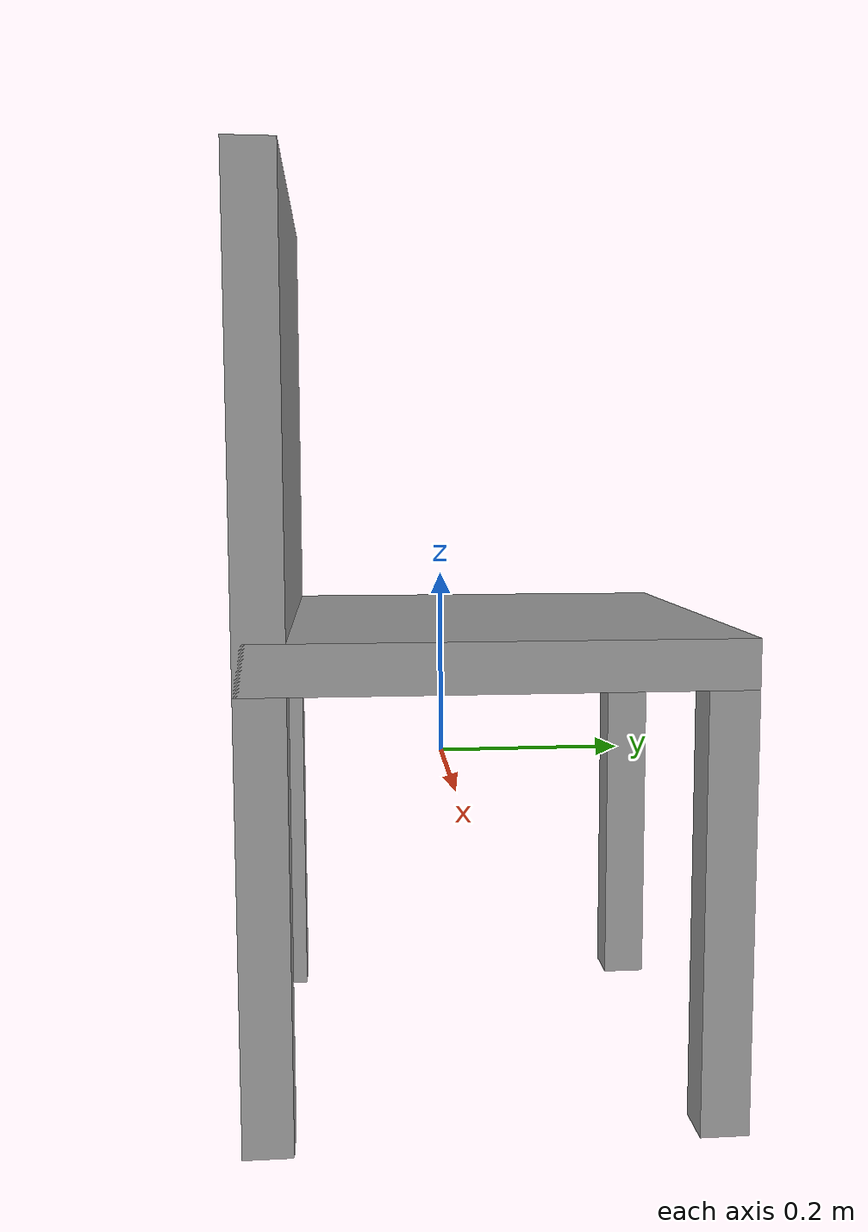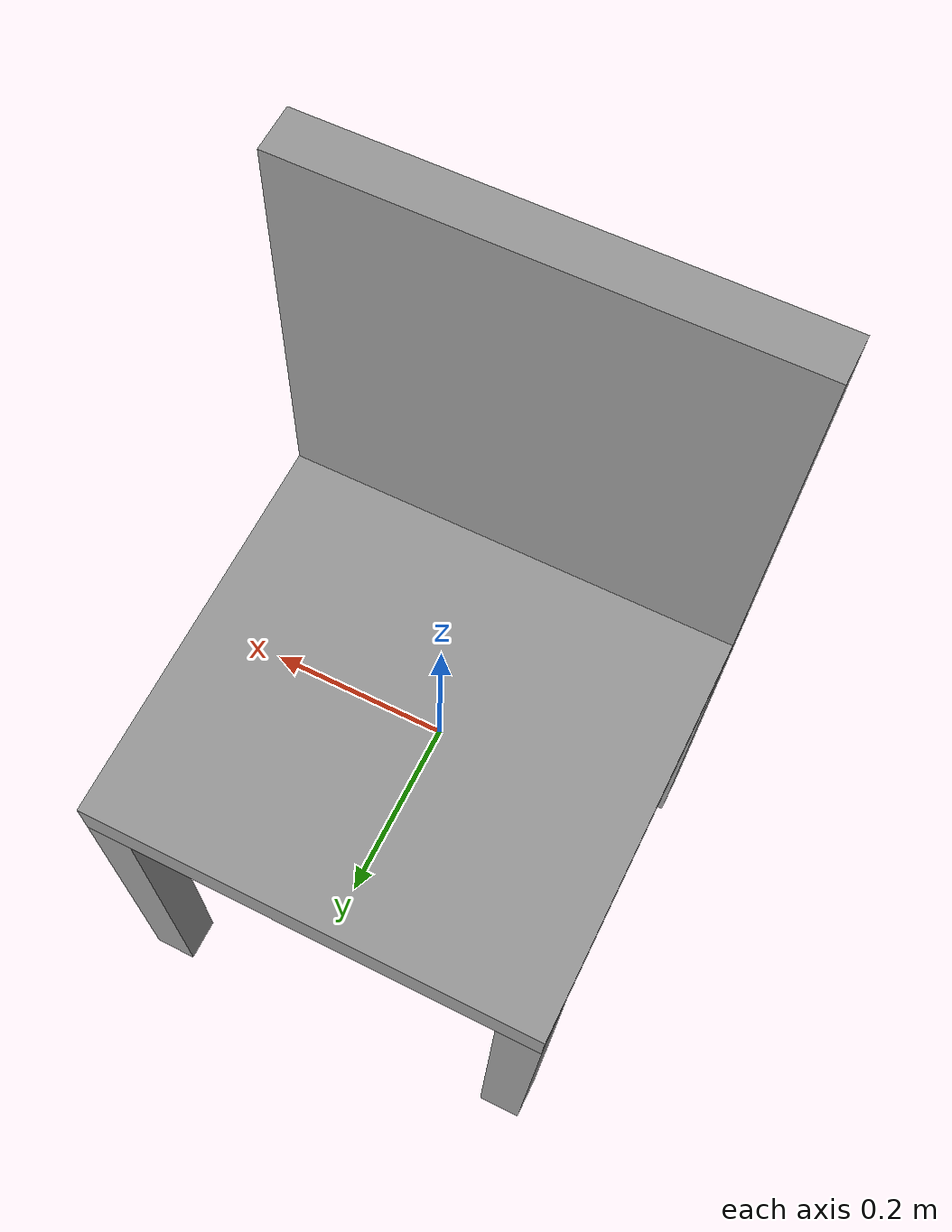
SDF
<?xml version='1.0'?>
<sdf version='1.6'>
  <model name='Chair'>
    <link name='link_5'>
      <pose frame=''>-0.225 0.256445 -0.120833 0 -0 0</pose>
      <inertial>
        <mass>1</mass>
        <inertia>
          <ixx>0.166667</ixx>
          <ixy>0</ixy>
          <ixz>0</ixz>
          <iyy>0.166667</iyy>
          <iyz>0</iyz>
          <izz>0.166667</izz>
        </inertia>
        <pose frame=''>0 0 0 0 -0 0</pose>
      </inertial>
      <gravity>1</gravity>
      <self_collide>0</self_collide>
      <kinematic>0</kinematic>
      <visual name='visual'>
        <pose frame=''>0 0 0 0 -0 0</pose>
        <geometry>
          <box>
            <size>0.05 0.05 0.45</size>
          </box>
        </geometry>
        <material>
          <lighting>1</lighting>
          <script>
            <uri>file://media/materials/scripts/gazebo.material</uri>
            <name>Gazebo/Grey</name>
          </script>
          <ambient>0.3 0.3 0.3 1</ambient>
          <diffuse>0.7 0.7 0.7 1</diffuse>
          <specular>0.01 0.01 0.01 1</specular>
          <emissive>0 0 0 1</emissive>
          <shader type='vertex'>
            <normal_map>__default__</normal_map>
          </shader>
        </material>
        <transparency>0</transparency>
        <cast_shadows>1</cast_shadows>
      </visual>
      <collision name='collision'>
        <laser_retro>0</laser_retro>
        <max_contacts>10</max_contacts>
        <pose frame=''>0 0 0 0 -0 0</pose>
        <geometry>
          <box>
            <size>0.05 0.05 0.45</size>
          </box>
        </geometry>
        <surface>
          <friction>
            <ode>
              <mu>1</mu>
              <mu2>1</mu2>
              <fdir1>0 0 0</fdir1>
              <slip1>0</slip1>
              <slip2>0</slip2>
            </ode>
            <torsional>
              <coefficient>1</coefficient>
              <patch_radius>0</patch_radius>
              <surface_radius>0</surface_radius>
              <use_patch_radius>1</use_patch_radius>
              <ode>
                <slip>0</slip>
              </ode>
            </torsional>
          </friction>
          <bounce>
            <restitution_coefficient>0</restitution_coefficient>
            <threshold>1e+06</threshold>
          </bounce>
          <contact>
            <collide_without_contact>0</collide_without_contact>
            <collide_without_contact_bitmask>1</collide_without_contact_bitmask>
            <collide_bitmask>1</collide_bitmask>
            <ode>
              <soft_cfm>0</soft_cfm>
              <soft_erp>0.2</soft_erp>
              <kp>1e+13</kp>
              <kd>1</kd>
              <max_vel>0.01</max_vel>
              <min_depth>0</min_depth>
            </ode>
            <bullet>
              <split_impulse>1</split_impulse>
              <split_impulse_penetration_threshold>-0.01</split_impulse_penetration_threshold>
              <soft_cfm>0</soft_cfm>
              <soft_erp>0.2</soft_erp>
              <kp>1e+13</kp>
              <kd>1</kd>
            </bullet>
          </contact>
        </surface>
      </collision>
    </link>
    <link name='link_5_clone'>
      <pose frame=''>0.225 0.263711 -0.120833 0 -0 0</pose>
      <inertial>
        <mass>1</mass>
        <inertia>
          <ixx>0.166667</ixx>
          <ixy>0</ixy>
          <ixz>0</ixz>
          <iyy>0.166667</iyy>
          <iyz>0</iyz>
          <izz>0.166667</izz>
        </inertia>
        <pose frame=''>0 0 0 0 -0 0</pose>
      </inertial>
      <self_collide>0</self_collide>
      <kinematic>0</kinematic>
      <visual name='visual'>
        <pose frame=''>0 0 0 0 -0 0</pose>
        <geometry>
          <box>
            <size>0.05 0.05 0.45</size>
          </box>
        </geometry>
        <material>
          <lighting>1</lighting>
          <script>
            <uri>file://media/materials/scripts/gazebo.material</uri>
            <name>Gazebo/Grey</name>
          </script>
          <ambient>0.3 0.3 0.3 1</ambient>
          <diffuse>0.7 0.7 0.7 1</diffuse>
          <specular>0.01 0.01 0.01 1</specular>
          <emissive>0 0 0 1</emissive>
          <shader type='vertex'>
            <normal_map>__default__</normal_map>
          </shader>
        </material>
        <transparency>0</transparency>
        <cast_shadows>1</cast_shadows>
      </visual>
      <collision name='collision'>
        <laser_retro>0</laser_retro>
        <max_contacts>10</max_contacts>
        <pose frame=''>0 0 0 0 -0 0</pose>
        <geometry>
          <box>
            <size>0.05 0.05 0.45</size>
          </box>
        </geometry>
        <surface>
          <friction>
            <ode>
              <mu>1</mu>
              <mu2>1</mu2>
              <fdir1>0 0 0</fdir1>
              <slip1>0</slip1>
              <slip2>0</slip2>
            </ode>
            <torsional>
              <coefficient>1</coefficient>
              <patch_radius>0</patch_radius>
              <surface_radius>0</surface_radius>
              <use_patch_radius>1</use_patch_radius>
              <ode>
                <slip>0</slip>
              </ode>
            </torsional>
          </friction>
          <bounce>
            <restitution_coefficient>0</restitution_coefficient>
            <threshold>1e+06</threshold>
          </bounce>
          <contact>
            <collide_without_contact>0</collide_without_contact>
            <collide_without_contact_bitmask>1</collide_without_contact_bitmask>
            <collide_bitmask>1</collide_bitmask>
            <ode>
              <soft_cfm>0</soft_cfm>
              <soft_erp>0.2</soft_erp>
              <kp>1e+13</kp>
              <kd>1</kd>
              <max_vel>0.01</max_vel>
              <min_depth>0</min_depth>
            </ode>
            <bullet>
              <split_impulse>1</split_impulse>
              <split_impulse_penetration_threshold>-0.01</split_impulse_penetration_threshold>
              <soft_cfm>0</soft_cfm>
              <soft_erp>0.2</soft_erp>
              <kp>1e+13</kp>
              <kd>1</kd>
            </bullet>
          </contact>
        </surface>
      </collision>
    </link>
    <link name='link_5_clone_0'>
      <pose frame=''>0.225 -0.186289 -0.120833 0 -0 0</pose>
      <inertial>
        <mass>1</mass>
        <inertia>
          <ixx>0.166667</ixx>
          <ixy>0</ixy>
          <ixz>0</ixz>
          <iyy>0.166667</iyy>
          <iyz>0</iyz>
          <izz>0.166667</izz>
        </inertia>
        <pose frame=''>0 0 0 0 -0 0</pose>
      </inertial>
      <self_collide>0</self_collide>
      <kinematic>0</kinematic>
      <visual name='visual'>
        <pose frame=''>0 0 0 0 -0 0</pose>
        <geometry>
          <box>
            <size>0.05 0.05 0.45</size>
          </box>
        </geometry>
        <material>
          <lighting>1</lighting>
          <script>
            <uri>file://media/materials/scripts/gazebo.material</uri>
            <name>Gazebo/Grey</name>
          </script>
          <ambient>0.3 0.3 0.3 1</ambient>
          <diffuse>0.7 0.7 0.7 1</diffuse>
          <specular>0.01 0.01 0.01 1</specular>
          <emissive>0 0 0 1</emissive>
          <shader type='vertex'>
            <normal_map>__default__</normal_map>
          </shader>
        </material>
        <transparency>0</transparency>
        <cast_shadows>1</cast_shadows>
      </visual>
      <collision name='collision'>
        <laser_retro>0</laser_retro>
        <max_contacts>10</max_contacts>
        <pose frame=''>0 0 0 0 -0 0</pose>
        <geometry>
          <box>
            <size>0.05 0.05 0.45</size>
          </box>
        </geometry>
        <surface>
          <friction>
            <ode>
              <mu>1</mu>
              <mu2>1</mu2>
              <fdir1>0 0 0</fdir1>
              <slip1>0</slip1>
              <slip2>0</slip2>
            </ode>
            <torsional>
              <coefficient>1</coefficient>
              <patch_radius>0</patch_radius>
              <surface_radius>0</surface_radius>
              <use_patch_radius>1</use_patch_radius>
              <ode>
                <slip>0</slip>
              </ode>
            </torsional>
          </friction>
          <bounce>
            <restitution_coefficient>0</restitution_coefficient>
            <threshold>1e+06</threshold>
          </bounce>
          <contact>
            <collide_without_contact>0</collide_without_contact>
            <collide_without_contact_bitmask>1</collide_without_contact_bitmask>
            <collide_bitmask>1</collide_bitmask>
            <ode>
              <soft_cfm>0</soft_cfm>
              <soft_erp>0.2</soft_erp>
              <kp>1e+13</kp>
              <kd>1</kd>
              <max_vel>0.01</max_vel>
              <min_depth>0</min_depth>
            </ode>
            <bullet>
              <split_impulse>1</split_impulse>
              <split_impulse_penetration_threshold>-0.01</split_impulse_penetration_threshold>
              <soft_cfm>0</soft_cfm>
              <soft_erp>0.2</soft_erp>
              <kp>1e+13</kp>
              <kd>1</kd>
            </bullet>
          </contact>
        </surface>
      </collision>
    </link>
    <link name='link_5_clone_1'>
      <pose frame=''>-0.225 -0.186289 -0.120833 0 -0 0</pose>
      <inertial>
        <mass>1</mass>
        <inertia>
          <ixx>0.166667</ixx>
          <ixy>0</ixy>
          <ixz>0</ixz>
          <iyy>0.166667</iyy>
          <iyz>0</iyz>
          <izz>0.166667</izz>
        </inertia>
        <pose frame=''>0 0 0 0 -0 0</pose>
      </inertial>
      <self_collide>0</self_collide>
      <kinematic>0</kinematic>
      <visual name='visual'>
        <pose frame=''>0 0 0 0 -0 0</pose>
        <geometry>
          <box>
            <size>0.05 0.05 0.45</size>
          </box>
        </geometry>
        <material>
          <lighting>1</lighting>
          <script>
            <uri>file://media/materials/scripts/gazebo.material</uri>
            <name>Gazebo/Grey</name>
          </script>
          <ambient>0.3 0.3 0.3 1</ambient>
          <diffuse>0.7 0.7 0.7 1</diffuse>
          <specular>0.01 0.01 0.01 1</specular>
          <emissive>0 0 0 1</emissive>
          <shader type='vertex'>
            <normal_map>__default__</normal_map>
          </shader>
        </material>
        <transparency>0</transparency>
        <cast_shadows>1</cast_shadows>
      </visual>
      <collision name='collision'>
        <laser_retro>0</laser_retro>
        <max_contacts>10</max_contacts>
        <pose frame=''>0 0 0 0 -0 0</pose>
        <geometry>
          <box>
            <size>0.05 0.05 0.45</size>
          </box>
        </geometry>
        <surface>
          <friction>
            <ode>
              <mu>1</mu>
              <mu2>1</mu2>
              <fdir1>0 0 0</fdir1>
              <slip1>0</slip1>
              <slip2>0</slip2>
            </ode>
            <torsional>
              <coefficient>1</coefficient>
              <patch_radius>0</patch_radius>
              <surface_radius>0</surface_radius>
              <use_patch_radius>1</use_patch_radius>
              <ode>
                <slip>0</slip>
              </ode>
            </torsional>
          </friction>
          <bounce>
            <restitution_coefficient>0</restitution_coefficient>
            <threshold>1e+06</threshold>
          </bounce>
          <contact>
            <collide_without_contact>0</collide_without_contact>
            <collide_without_contact_bitmask>1</collide_without_contact_bitmask>
            <collide_bitmask>1</collide_bitmask>
            <ode>
              <soft_cfm>0</soft_cfm>
              <soft_erp>0.2</soft_erp>
              <kp>1e+13</kp>
              <kd>1</kd>
              <max_vel>0.01</max_vel>
              <min_depth>0</min_depth>
            </ode>
            <bullet>
              <split_impulse>1</split_impulse>
              <split_impulse_penetration_threshold>-0.01</split_impulse_penetration_threshold>
              <soft_cfm>0</soft_cfm>
              <soft_erp>0.2</soft_erp>
              <kp>1e+13</kp>
              <kd>1</kd>
            </bullet>
          </contact>
        </surface>
      </collision>
    </link>
    <link name='link_7'>
      <pose frame=''>-0 -0.186289 0.354167 0 -0 0</pose>
      <inertial>
        <mass>1</mass>
        <inertia>
          <ixx>0.166667</ixx>
          <ixy>0</ixy>
          <ixz>0</ixz>
          <iyy>0.166667</iyy>
          <iyz>0</iyz>
          <izz>0.166667</izz>
        </inertia>
        <pose frame=''>0 0 0 0 -0 0</pose>
      </inertial>
      <gravity>1</gravity>
      <self_collide>0</self_collide>
      <kinematic>0</kinematic>
      <visual name='visual'>
        <pose frame=''>0 0 0 0 -0 0</pose>
        <geometry>
          <box>
            <size>0.5 0.05 0.5</size>
          </box>
        </geometry>
        <material>
          <lighting>1</lighting>
          <script>
            <uri>file://media/materials/scripts/gazebo.material</uri>
            <name>Gazebo/Grey</name>
          </script>
          <ambient>0.3 0.3 0.3 1</ambient>
          <diffuse>0.7 0.7 0.7 1</diffuse>
          <specular>0.01 0.01 0.01 1</specular>
          <emissive>0 0 0 1</emissive>
          <shader type='vertex'>
            <normal_map>__default__</normal_map>
          </shader>
        </material>
        <transparency>0</transparency>
        <cast_shadows>1</cast_shadows>
      </visual>
      <collision name='collision'>
        <laser_retro>0</laser_retro>
        <max_contacts>10</max_contacts>
        <pose frame=''>0 0 0 0 -0 0</pose>
        <geometry>
          <box>
            <size>0.5 0.05 0.5</size>
          </box>
        </geometry>
        <surface>
          <friction>
            <ode>
              <mu>1</mu>
              <mu2>1</mu2>
              <fdir1>0 0 0</fdir1>
              <slip1>0</slip1>
              <slip2>0</slip2>
            </ode>
            <torsional>
              <coefficient>1</coefficient>
              <patch_radius>0</patch_radius>
              <surface_radius>0</surface_radius>
              <use_patch_radius>1</use_patch_radius>
              <ode>
                <slip>0</slip>
              </ode>
            </torsional>
          </friction>
          <bounce>
            <restitution_coefficient>0</restitution_coefficient>
            <threshold>1e+06</threshold>
          </bounce>
          <contact>
            <collide_without_contact>0</collide_without_contact>
            <collide_without_contact_bitmask>1</collide_without_contact_bitmask>
            <collide_bitmask>1</collide_bitmask>
            <ode>
              <soft_cfm>0</soft_cfm>
              <soft_erp>0.2</soft_erp>
              <kp>1e+13</kp>
              <kd>1</kd>
              <max_vel>0.01</max_vel>
              <min_depth>0</min_depth>
            </ode>
            <bullet>
              <split_impulse>1</split_impulse>
              <split_impulse_penetration_threshold>-0.01</split_impulse_penetration_threshold>
              <soft_cfm>0</soft_cfm>
              <soft_erp>0.2</soft_erp>
              <kp>1e+13</kp>
              <kd>1</kd>
            </bullet>
          </contact>
        </surface>
      </collision>
    </link>
    <link name='link_8'>
      <pose frame=''>-0 0.038711 0.129167 0 -0 0</pose>
      <inertial>
        <mass>1</mass>
        <inertia>
          <ixx>0.166667</ixx>
          <ixy>0</ixy>
          <ixz>0</ixz>
          <iyy>0.166667</iyy>
          <iyz>0</iyz>
          <izz>0.166667</izz>
        </inertia>
        <pose frame=''>0 0 0 0 -0 0</pose>
      </inertial>
      <gravity>1</gravity>
      <self_collide>0</self_collide>
      <kinematic>0</kinematic>
      <visual name='visual'>
        <pose frame=''>0 0 0 0 -0 0</pose>
        <geometry>
          <box>
            <size>0.5 0.5 0.05</size>
          </box>
        </geometry>
        <material>
          <lighting>1</lighting>
          <script>
            <uri>file://media/materials/scripts/gazebo.material</uri>
            <name>Gazebo/Grey</name>
          </script>
          <ambient>0.3 0.3 0.3 1</ambient>
          <diffuse>0.7 0.7 0.7 1</diffuse>
          <specular>0.01 0.01 0.01 1</specular>
          <emissive>0 0 0 1</emissive>
          <shader type='vertex'>
            <normal_map>__default__</normal_map>
          </shader>
        </material>
        <transparency>0</transparency>
        <cast_shadows>1</cast_shadows>
      </visual>
      <collision name='collision'>
        <laser_retro>0</laser_retro>
        <max_contacts>10</max_contacts>
        <pose frame=''>0 0 0 0 -0 0</pose>
        <geometry>
          <box>
            <size>0.5 0.5 0.05</size>
          </box>
        </geometry>
        <surface>
          <friction>
            <ode>
              <mu>1</mu>
              <mu2>1</mu2>
              <fdir1>0 0 0</fdir1>
              <slip1>0</slip1>
              <slip2>0</slip2>
            </ode>
            <torsional>
              <coefficient>1</coefficient>
              <patch_radius>0</patch_radius>
              <surface_radius>0</surface_radius>
              <use_patch_radius>1</use_patch_radius>
              <ode>
                <slip>0</slip>
              </ode>
            </torsional>
          </friction>
          <bounce>
            <restitution_coefficient>0</restitution_coefficient>
            <threshold>1e+06</threshold>
          </bounce>
          <contact>
            <collide_without_contact>0</collide_without_contact>
            <collide_without_contact_bitmask>1</collide_without_contact_bitmask>
            <collide_bitmask>1</collide_bitmask>
            <ode>
              <soft_cfm>0</soft_cfm>
              <soft_erp>0.2</soft_erp>
              <kp>1e+13</kp>
              <kd>1</kd>
              <max_vel>0.01</max_vel>
              <min_depth>0</min_depth>
            </ode>
            <bullet>
              <split_impulse>1</split_impulse>
              <split_impulse_penetration_threshold>-0.01</split_impulse_penetration_threshold>
              <soft_cfm>0</soft_cfm>
              <soft_erp>0.2</soft_erp>
              <kp>1e+13</kp>
              <kd>1</kd>
            </bullet>
          </contact>
        </surface>
      </collision>
    </link>
    <joint name='link_8_JOINT_15' type='fixed'>
      <parent>link_8</parent>
      <child>link_5_clone</child>
      <pose frame=''>0 0 0 0 -0 0</pose>
      <physics>
        <ode>
          <limit>
            <cfm>0</cfm>
            <erp>0.2</erp>
          </limit>
          <suspension>
            <cfm>0</cfm>
            <erp>0.2</erp>
          </suspension>
        </ode>
      </physics>
    </joint>
    <joint name='link_8_JOINT_16' type='fixed'>
      <parent>link_8</parent>
      <child>link_5</child>
      <pose frame=''>0 0 0 0 -0 0</pose>
      <physics>
        <ode>
          <limit>
            <cfm>0</cfm>
            <erp>0.2</erp>
          </limit>
          <suspension>
            <cfm>0</cfm>
            <erp>0.2</erp>
          </suspension>
        </ode>
      </physics>
    </joint>
    <joint name='link_8_JOINT_17' type='fixed'>
      <parent>link_8</parent>
      <child>link_5</child>
      <pose frame=''>0 0 0 0 -0 0</pose>
      <physics>
        <ode>
          <limit>
            <cfm>0</cfm>
            <erp>0.2</erp>
          </limit>
          <suspension>
            <cfm>0</cfm>
            <erp>0.2</erp>
          </suspension>
        </ode>
      </physics>
    </joint>
    <joint name='link_8_JOINT_18' type='fixed'>
      <parent>link_8</parent>
      <child>link_5_clone_0</child>
      <pose frame=''>0 0 0 0 -0 0</pose>
      <physics>
        <ode>
          <limit>
            <cfm>0</cfm>
            <erp>0.2</erp>
          </limit>
          <suspension>
            <cfm>0</cfm>
            <erp>0.2</erp>
          </suspension>
        </ode>
      </physics>
    </joint>
    <joint name='link_8_JOINT_19' type='fixed'>
      <parent>link_8</parent>
      <child>link_5_clone_1</child>
      <pose frame=''>0 0 0 0 -0 0</pose>
      <physics>
        <ode>
          <limit>
            <cfm>0</cfm>
            <erp>0.2</erp>
          </limit>
          <suspension>
            <cfm>0</cfm>
            <erp>0.2</erp>
          </suspension>
        </ode>
      </physics>
    </joint>
    <joint name='link_8_JOINT_20' type='fixed'>
      <parent>link_8</parent>
      <child>link_7</child>
      <pose frame=''>0 0 0 0 -0 0</pose>
      <physics>
        <ode>
          <limit>
            <cfm>0</cfm>
            <erp>0.2</erp>
          </limit>
          <suspension>
            <cfm>0</cfm>
            <erp>0.2</erp>
          </suspension>
        </ode>
      </physics>
    </joint>
    <static>0</static>
    <allow_auto_disable>1</allow_auto_disable>
  </model>
</sdf>
